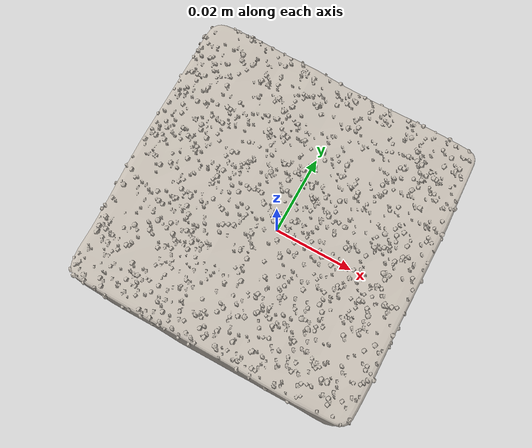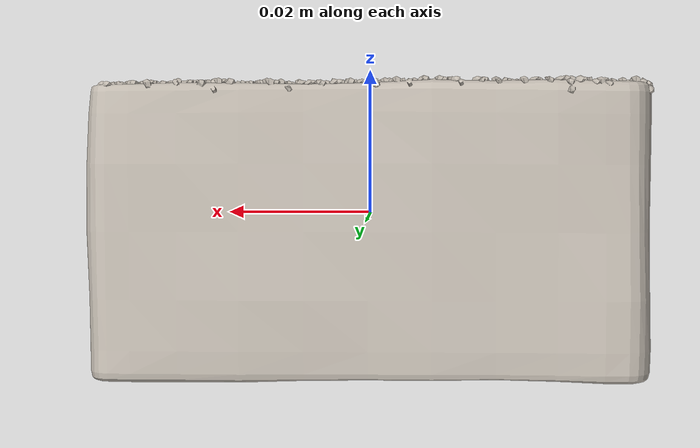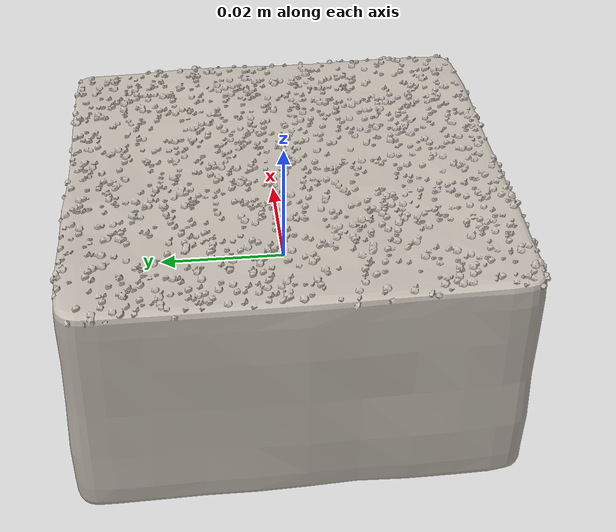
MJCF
<mujoco model="cake_18">
  <asset>
    <mesh file="visual/model_normalized_0.obj" name="model_normalized_0_vis" scale="0.06999999999999998 0.06999999999999998 0.06999999999999998" refquat="1.0 0.0 0.0 0.0"/>
    <mesh file="collision/model_normalized_collision_22.obj" name="model_normalized_collision_22._coll" scale="0.06999999999999998 0.06999999999999998 0.06999999999999998" refquat="1.0 0.0 0.0 0.0"/>
    <mesh file="collision/model_normalized_collision_23.obj" name="model_normalized_collision_23._coll" scale="0.06999999999999998 0.06999999999999998 0.06999999999999998" refquat="1.0 0.0 0.0 0.0"/>
    <mesh file="collision/model_normalized_collision_21.obj" name="model_normalized_collision_21._coll" scale="0.06999999999999998 0.06999999999999998 0.06999999999999998" refquat="1.0 0.0 0.0 0.0"/>
    <mesh file="collision/model_normalized_collision_20.obj" name="model_normalized_collision_20._coll" scale="0.06999999999999998 0.06999999999999998 0.06999999999999998" refquat="1.0 0.0 0.0 0.0"/>
    <mesh file="collision/model_normalized_collision_24.obj" name="model_normalized_collision_24._coll" scale="0.06999999999999998 0.06999999999999998 0.06999999999999998" refquat="1.0 0.0 0.0 0.0"/>
    <mesh file="collision/model_normalized_collision_30.obj" name="model_normalized_collision_30._coll" scale="0.06999999999999998 0.06999999999999998 0.06999999999999998" refquat="1.0 0.0 0.0 0.0"/>
    <mesh file="collision/model_normalized_collision_18.obj" name="model_normalized_collision_18._coll" scale="0.06999999999999998 0.06999999999999998 0.06999999999999998" refquat="1.0 0.0 0.0 0.0"/>
    <mesh file="collision/model_normalized_collision_19.obj" name="model_normalized_collision_19._coll" scale="0.06999999999999998 0.06999999999999998 0.06999999999999998" refquat="1.0 0.0 0.0 0.0"/>
    <mesh file="collision/model_normalized_collision_31.obj" name="model_normalized_collision_31._coll" scale="0.06999999999999998 0.06999999999999998 0.06999999999999998" refquat="1.0 0.0 0.0 0.0"/>
    <mesh file="collision/model_normalized_collision_25.obj" name="model_normalized_collision_25._coll" scale="0.06999999999999998 0.06999999999999998 0.06999999999999998" refquat="1.0 0.0 0.0 0.0"/>
    <mesh file="collision/model_normalized_collision_27.obj" name="model_normalized_collision_27._coll" scale="0.06999999999999998 0.06999999999999998 0.06999999999999998" refquat="1.0 0.0 0.0 0.0"/>
    <mesh file="collision/model_normalized_collision_26.obj" name="model_normalized_collision_26._coll" scale="0.06999999999999998 0.06999999999999998 0.06999999999999998" refquat="1.0 0.0 0.0 0.0"/>
    <mesh file="collision/model_normalized_collision_9.obj" name="model_normalized_collision_9._coll" scale="0.06999999999999998 0.06999999999999998 0.06999999999999998" refquat="1.0 0.0 0.0 0.0"/>
    <mesh file="collision/model_normalized_collision_8.obj" name="model_normalized_collision_8._coll" scale="0.06999999999999998 0.06999999999999998 0.06999999999999998" refquat="1.0 0.0 0.0 0.0"/>
    <mesh file="collision/model_normalized_collision_6.obj" name="model_normalized_collision_6._coll" scale="0.06999999999999998 0.06999999999999998 0.06999999999999998" refquat="1.0 0.0 0.0 0.0"/>
    <mesh file="collision/model_normalized_collision_7.obj" name="model_normalized_collision_7._coll" scale="0.06999999999999998 0.06999999999999998 0.06999999999999998" refquat="1.0 0.0 0.0 0.0"/>
    <mesh file="collision/model_normalized_collision_5.obj" name="model_normalized_collision_5._coll" scale="0.06999999999999998 0.06999999999999998 0.06999999999999998" refquat="1.0 0.0 0.0 0.0"/>
    <mesh file="collision/model_normalized_collision_4.obj" name="model_normalized_collision_4._coll" scale="0.06999999999999998 0.06999999999999998 0.06999999999999998" refquat="1.0 0.0 0.0 0.0"/>
    <mesh file="collision/model_normalized_collision_0.obj" name="model_normalized_collision_0._coll" scale="0.06999999999999998 0.06999999999999998 0.06999999999999998" refquat="1.0 0.0 0.0 0.0"/>
    <mesh file="collision/model_normalized_collision_1.obj" name="model_normalized_collision_1._coll" scale="0.06999999999999998 0.06999999999999998 0.06999999999999998" refquat="1.0 0.0 0.0 0.0"/>
    <mesh file="collision/model_normalized_collision_3.obj" name="model_normalized_collision_3._coll" scale="0.06999999999999998 0.06999999999999998 0.06999999999999998" refquat="1.0 0.0 0.0 0.0"/>
    <mesh file="collision/model_normalized_collision_2.obj" name="model_normalized_collision_2._coll" scale="0.06999999999999998 0.06999999999999998 0.06999999999999998" refquat="1.0 0.0 0.0 0.0"/>
    <mesh file="collision/model_normalized_collision_17.obj" name="model_normalized_collision_17._coll" scale="0.06999999999999998 0.06999999999999998 0.06999999999999998" refquat="1.0 0.0 0.0 0.0"/>
    <mesh file="collision/model_normalized_collision_16.obj" name="model_normalized_collision_16._coll" scale="0.06999999999999998 0.06999999999999998 0.06999999999999998" refquat="1.0 0.0 0.0 0.0"/>
    <mesh file="collision/model_normalized_collision_28.obj" name="model_normalized_collision_28._coll" scale="0.06999999999999998 0.06999999999999998 0.06999999999999998" refquat="1.0 0.0 0.0 0.0"/>
    <mesh file="collision/model_normalized_collision_14.obj" name="model_normalized_collision_14._coll" scale="0.06999999999999998 0.06999999999999998 0.06999999999999998" refquat="1.0 0.0 0.0 0.0"/>
    <mesh file="collision/model_normalized_collision_15.obj" name="model_normalized_collision_15._coll" scale="0.06999999999999998 0.06999999999999998 0.06999999999999998" refquat="1.0 0.0 0.0 0.0"/>
    <mesh file="collision/model_normalized_collision_29.obj" name="model_normalized_collision_29._coll" scale="0.06999999999999998 0.06999999999999998 0.06999999999999998" refquat="1.0 0.0 0.0 0.0"/>
    <mesh file="collision/model_normalized_collision_11.obj" name="model_normalized_collision_11._coll" scale="0.06999999999999998 0.06999999999999998 0.06999999999999998" refquat="1.0 0.0 0.0 0.0"/>
    <mesh file="collision/model_normalized_collision_10.obj" name="model_normalized_collision_10._coll" scale="0.06999999999999998 0.06999999999999998 0.06999999999999998" refquat="1.0 0.0 0.0 0.0"/>
    <mesh file="collision/model_normalized_collision_12.obj" name="model_normalized_collision_12._coll" scale="0.06999999999999998 0.06999999999999998 0.06999999999999998" refquat="1.0 0.0 0.0 0.0"/>
    <mesh file="collision/model_normalized_collision_13.obj" name="model_normalized_collision_13._coll" scale="0.06999999999999998 0.06999999999999998 0.06999999999999998" refquat="1.0 0.0 0.0 0.0"/>
    <texture type="2d" name="image0" file="visual/image0.png"/>
    <material name="honey_cake_mat" texture="image0" specular="0.5" shininess="0.25"/>
  </asset>
  <worldbody>
  <body>
      <body name="object">
        <geom solimp="0.998 0.998 0.001" solref="0.001 1" density="100" friction="0.95 0.3 0.1" type="mesh" mesh="model_normalized_0_vis" conaffinity="0" contype="0" group="1" material="honey_cake_mat"/>
        <geom solimp="0.998 0.998 0.001" solref="0.001 1" density="100" friction="0.95 0.3 0.1" type="mesh" mesh="model_normalized_collision_22._coll" group="0" rgba="0.8 0.8 0.8 0.0"/>
        <geom solimp="0.998 0.998 0.001" solref="0.001 1" density="100" friction="0.95 0.3 0.1" type="mesh" mesh="model_normalized_collision_23._coll" group="0" rgba="0.8 0.8 0.8 0.0"/>
        <geom solimp="0.998 0.998 0.001" solref="0.001 1" density="100" friction="0.95 0.3 0.1" type="mesh" mesh="model_normalized_collision_21._coll" group="0" rgba="0.8 0.8 0.8 0.0"/>
        <geom solimp="0.998 0.998 0.001" solref="0.001 1" density="100" friction="0.95 0.3 0.1" type="mesh" mesh="model_normalized_collision_20._coll" group="0" rgba="0.8 0.8 0.8 0.0"/>
        <geom solimp="0.998 0.998 0.001" solref="0.001 1" density="100" friction="0.95 0.3 0.1" type="mesh" mesh="model_normalized_collision_24._coll" group="0" rgba="0.8 0.8 0.8 0.0"/>
        <geom solimp="0.998 0.998 0.001" solref="0.001 1" density="100" friction="0.95 0.3 0.1" type="mesh" mesh="model_normalized_collision_30._coll" group="0" rgba="0.8 0.8 0.8 0.0"/>
        <geom solimp="0.998 0.998 0.001" solref="0.001 1" density="100" friction="0.95 0.3 0.1" type="mesh" mesh="model_normalized_collision_18._coll" group="0" rgba="0.8 0.8 0.8 0.0"/>
        <geom solimp="0.998 0.998 0.001" solref="0.001 1" density="100" friction="0.95 0.3 0.1" type="mesh" mesh="model_normalized_collision_19._coll" group="0" rgba="0.8 0.8 0.8 0.0"/>
        <geom solimp="0.998 0.998 0.001" solref="0.001 1" density="100" friction="0.95 0.3 0.1" type="mesh" mesh="model_normalized_collision_31._coll" group="0" rgba="0.8 0.8 0.8 0.0"/>
        <geom solimp="0.998 0.998 0.001" solref="0.001 1" density="100" friction="0.95 0.3 0.1" type="mesh" mesh="model_normalized_collision_25._coll" group="0" rgba="0.8 0.8 0.8 0.0"/>
        <geom solimp="0.998 0.998 0.001" solref="0.001 1" density="100" friction="0.95 0.3 0.1" type="mesh" mesh="model_normalized_collision_27._coll" group="0" rgba="0.8 0.8 0.8 0.0"/>
        <geom solimp="0.998 0.998 0.001" solref="0.001 1" density="100" friction="0.95 0.3 0.1" type="mesh" mesh="model_normalized_collision_26._coll" group="0" rgba="0.8 0.8 0.8 0.0"/>
        <geom solimp="0.998 0.998 0.001" solref="0.001 1" density="100" friction="0.95 0.3 0.1" type="mesh" mesh="model_normalized_collision_9._coll" group="0" rgba="0.8 0.8 0.8 0.0"/>
        <geom solimp="0.998 0.998 0.001" solref="0.001 1" density="100" friction="0.95 0.3 0.1" type="mesh" mesh="model_normalized_collision_8._coll" group="0" rgba="0.8 0.8 0.8 0.0"/>
        <geom solimp="0.998 0.998 0.001" solref="0.001 1" density="100" friction="0.95 0.3 0.1" type="mesh" mesh="model_normalized_collision_6._coll" group="0" rgba="0.8 0.8 0.8 0.0"/>
        <geom solimp="0.998 0.998 0.001" solref="0.001 1" density="100" friction="0.95 0.3 0.1" type="mesh" mesh="model_normalized_collision_7._coll" group="0" rgba="0.8 0.8 0.8 0.0"/>
        <geom solimp="0.998 0.998 0.001" solref="0.001 1" density="100" friction="0.95 0.3 0.1" type="mesh" mesh="model_normalized_collision_5._coll" group="0" rgba="0.8 0.8 0.8 0.0"/>
        <geom solimp="0.998 0.998 0.001" solref="0.001 1" density="100" friction="0.95 0.3 0.1" type="mesh" mesh="model_normalized_collision_4._coll" group="0" rgba="0.8 0.8 0.8 0.0"/>
        <geom solimp="0.998 0.998 0.001" solref="0.001 1" density="100" friction="0.95 0.3 0.1" type="mesh" mesh="model_normalized_collision_0._coll" group="0" rgba="0.8 0.8 0.8 0.0"/>
        <geom solimp="0.998 0.998 0.001" solref="0.001 1" density="100" friction="0.95 0.3 0.1" type="mesh" mesh="model_normalized_collision_1._coll" group="0" rgba="0.8 0.8 0.8 0.0"/>
        <geom solimp="0.998 0.998 0.001" solref="0.001 1" density="100" friction="0.95 0.3 0.1" type="mesh" mesh="model_normalized_collision_3._coll" group="0" rgba="0.8 0.8 0.8 0.0"/>
        <geom solimp="0.998 0.998 0.001" solref="0.001 1" density="100" friction="0.95 0.3 0.1" type="mesh" mesh="model_normalized_collision_2._coll" group="0" rgba="0.8 0.8 0.8 0.0"/>
        <geom solimp="0.998 0.998 0.001" solref="0.001 1" density="100" friction="0.95 0.3 0.1" type="mesh" mesh="model_normalized_collision_17._coll" group="0" rgba="0.8 0.8 0.8 0.0"/>
        <geom solimp="0.998 0.998 0.001" solref="0.001 1" density="100" friction="0.95 0.3 0.1" type="mesh" mesh="model_normalized_collision_16._coll" group="0" rgba="0.8 0.8 0.8 0.0"/>
        <geom solimp="0.998 0.998 0.001" solref="0.001 1" density="100" friction="0.95 0.3 0.1" type="mesh" mesh="model_normalized_collision_28._coll" group="0" rgba="0.8 0.8 0.8 0.0"/>
        <geom solimp="0.998 0.998 0.001" solref="0.001 1" density="100" friction="0.95 0.3 0.1" type="mesh" mesh="model_normalized_collision_14._coll" group="0" rgba="0.8 0.8 0.8 0.0"/>
        <geom solimp="0.998 0.998 0.001" solref="0.001 1" density="100" friction="0.95 0.3 0.1" type="mesh" mesh="model_normalized_collision_15._coll" group="0" rgba="0.8 0.8 0.8 0.0"/>
        <geom solimp="0.998 0.998 0.001" solref="0.001 1" density="100" friction="0.95 0.3 0.1" type="mesh" mesh="model_normalized_collision_29._coll" group="0" rgba="0.8 0.8 0.8 0.0"/>
        <geom solimp="0.998 0.998 0.001" solref="0.001 1" density="100" friction="0.95 0.3 0.1" type="mesh" mesh="model_normalized_collision_11._coll" group="0" rgba="0.8 0.8 0.8 0.0"/>
        <geom solimp="0.998 0.998 0.001" solref="0.001 1" density="100" friction="0.95 0.3 0.1" type="mesh" mesh="model_normalized_collision_10._coll" group="0" rgba="0.8 0.8 0.8 0.0"/>
        <geom solimp="0.998 0.998 0.001" solref="0.001 1" density="100" friction="0.95 0.3 0.1" type="mesh" mesh="model_normalized_collision_12._coll" group="0" rgba="0.8 0.8 0.8 0.0"/>
        <geom solimp="0.998 0.998 0.001" solref="0.001 1" density="100" friction="0.95 0.3 0.1" type="mesh" mesh="model_normalized_collision_13._coll" group="0" rgba="0.8 0.8 0.8 0.0"/>
      </body>
      <site rgba="0 0 0 0" size="0.005" pos="-0.00012104014999999908 3.728165000000171e-05 -0.018292150099999994" name="bottom_site"/>
      <site rgba="0 0 0 0" size="0.005" pos="-0.00012104014999999908 3.728165000000171e-05 0.018346306299999993" name="top_site"/>
      <site rgba="0 0 0 0" size="0.005" pos="0.03468948069999999 0.033837523999999994 2.707810000000032e-05" name="horizontal_radius_site"/>
    </body>
    </worldbody>
</mujoco>
